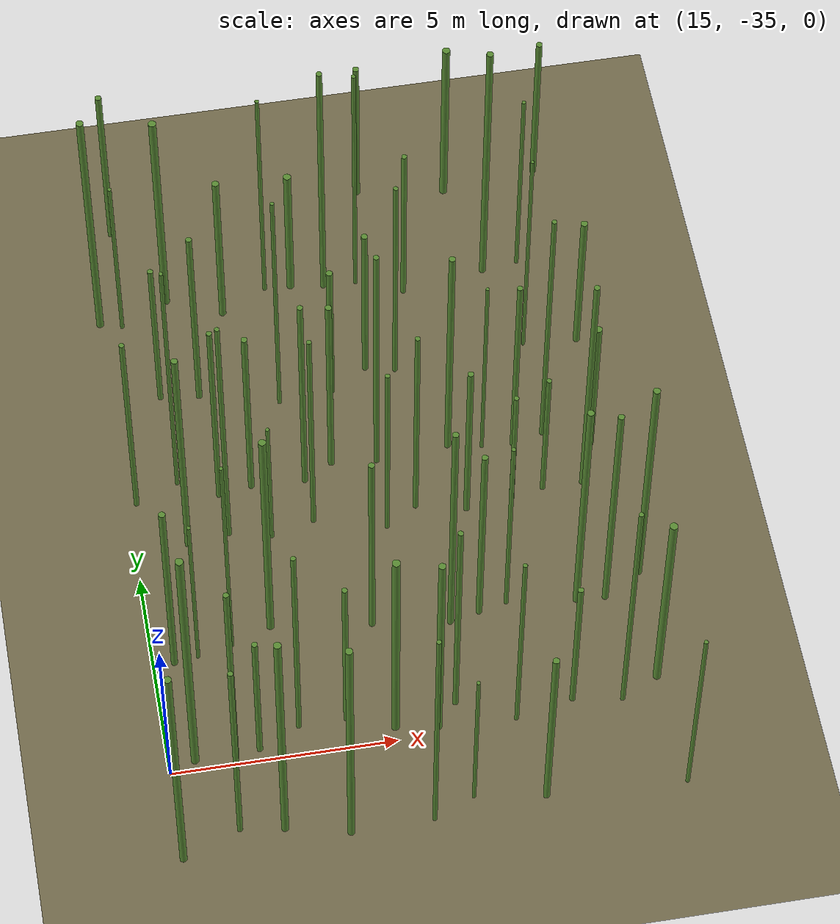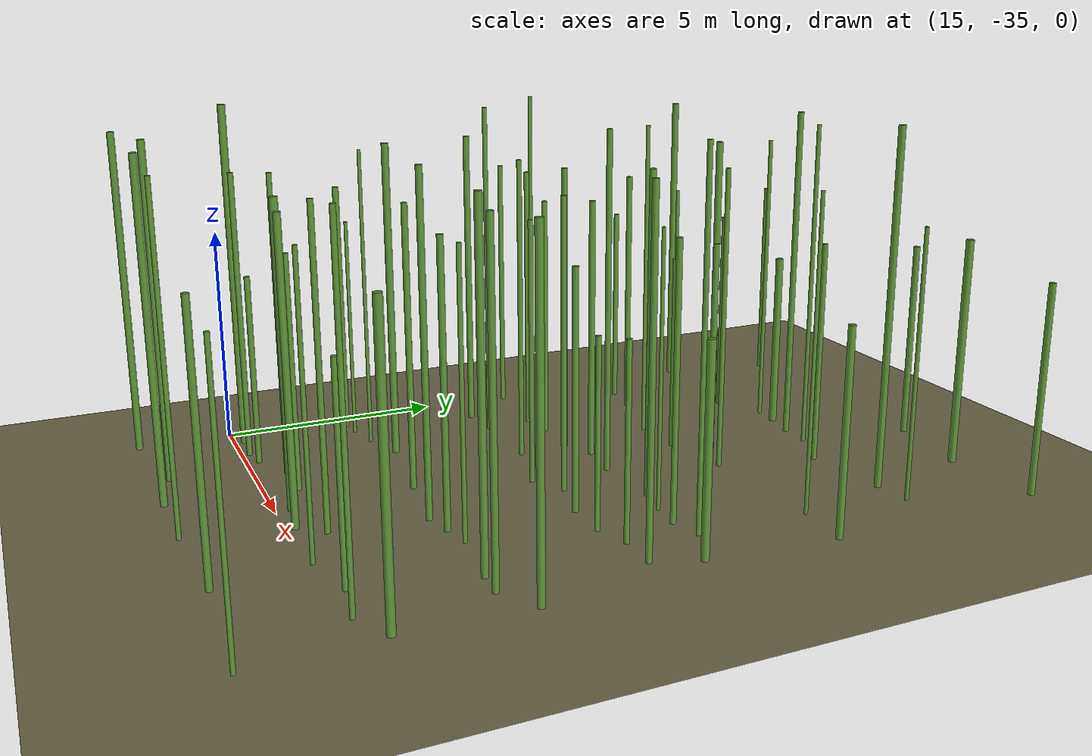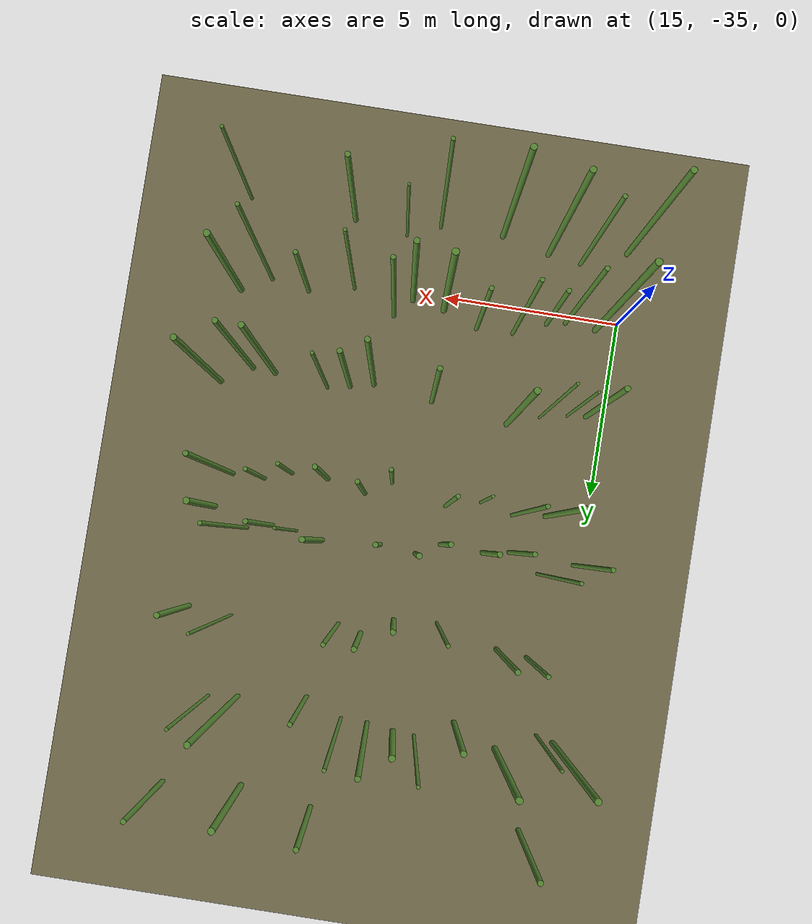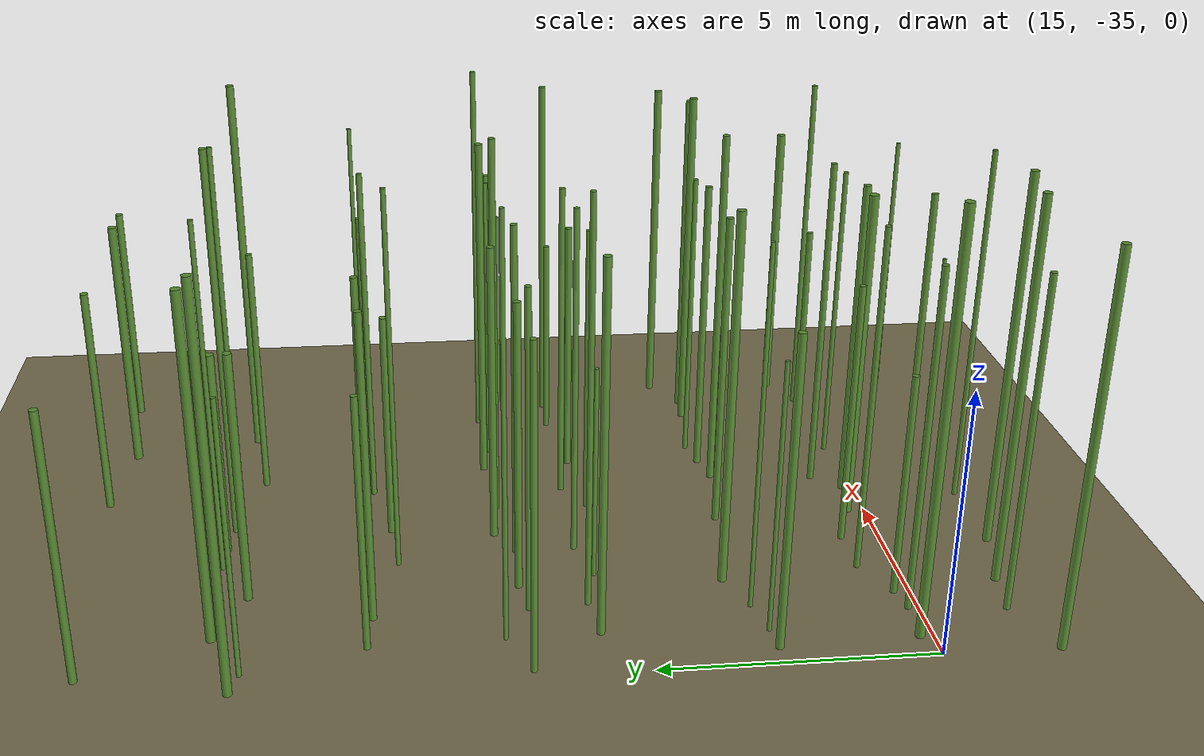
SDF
<sdf version="1.9">
 <world name="bamboo_field">
  <model name="ground_plane">
   <static>true</static>
   <link name="link">
    <collision name="collision">
     <geometry><plane><normal>0 0 1</normal><size>80.0 80.0</size></plane></geometry>
    </collision>
    <visual name="visual">
     <geometry><plane><normal>0 0 1</normal><size>80.0 80.0</size></plane></geometry>
     <material><diffuse>0.45 0.42 0.30 1</diffuse></material>
    </visual>
   </link>
  </model>
  <model name="bamboo_48">
   <static>true</static>
   <pose>14.992202338627873 -37.091404984395865 3.7214051640018058 0 0 0</pose>
   <link name="link">
    <collision name="collision">
     <geometry>
      <cylinder><radius>0.07980611524440209</radius><length>7.4428103280036115</length></cylinder>
     </geometry>
    </collision>
    <visual name="visual">
     <geometry>
      <cylinder><radius>0.07980611524440209</radius><length>7.4428103280036115</length></cylinder>
     </geometry>
     <material><diffuse>0.35 0.55 0.20 1</diffuse><specular>0.1 0.1 0.1 1</specular></material>
    </visual>
   </link>
  </model>
  <model name="bamboo_49">
   <static>true</static>
   <pose>16.28300082232963 -36.587541850248115 3.241323020301426 0 0 0</pose>
   <link name="link">
    <collision name="collision">
     <geometry>
      <cylinder><radius>0.06031886949160584</radius><length>6.482646040602852</length></cylinder>
     </geometry>
    </collision>
    <visual name="visual">
     <geometry>
      <cylinder><radius>0.06031886949160584</radius><length>6.482646040602852</length></cylinder>
     </geometry>
     <material><diffuse>0.35 0.55 0.20 1</diffuse><specular>0.1 0.1 0.1 1</specular></material>
    </visual>
   </link>
  </model>
  <model name="bamboo_50">
   <static>true</static>
   <pose>17.238006217313806 -36.72286343100513 3.7628324093266485 0 0 0</pose>
   <link name="link">
    <collision name="collision">
     <geometry>
      <cylinder><radius>0.08053858599701985</radius><length>7.525664818653297</length></cylinder>
     </geometry>
    </collision>
    <visual name="visual">
     <geometry>
      <cylinder><radius>0.08053858599701985</radius><length>7.525664818653297</length></cylinder>
     </geometry>
     <material><diffuse>0.35 0.55 0.20 1</diffuse><specular>0.1 0.1 0.1 1</specular></material>
    </visual>
   </link>
  </model>
  <model name="bamboo_51">
   <static>true</static>
   <pose>18.621054472765717 -37.05169456451756 3.728128056750559 0 0 0</pose>
   <link name="link">
    <collision name="collision">
     <geometry>
      <cylinder><radius>0.08011175694685695</radius><length>7.456256113501118</length></cylinder>
     </geometry>
    </collision>
    <visual name="visual">
     <geometry>
      <cylinder><radius>0.08011175694685695</radius><length>7.456256113501118</length></cylinder>
     </geometry>
     <material><diffuse>0.35 0.55 0.20 1</diffuse><specular>0.1 0.1 0.1 1</specular></material>
    </visual>
   </link>
  </model>
  <model name="bamboo_52">
   <static>true</static>
   <pose>20.43955873225553 -37.02482495409667 3.633173211193858 0 0 0</pose>
   <link name="link">
    <collision name="collision">
     <geometry>
      <cylinder><radius>0.05112168587728322</radius><length>7.266346422387716</length></cylinder>
     </geometry>
    </collision>
    <visual name="visual">
     <geometry>
      <cylinder><radius>0.05112168587728322</radius><length>7.266346422387716</length></cylinder>
     </geometry>
     <material><diffuse>0.35 0.55 0.20 1</diffuse><specular>0.1 0.1 0.1 1</specular></material>
    </visual>
   </link>
  </model>
  <model name="bamboo_53">
   <static>true</static>
   <pose>21.36526803347981 -36.63341150181249 2.3862595766554175 0 0 0</pose>
   <link name="link">
    <collision name="collision">
     <geometry>
      <cylinder><radius>0.04118322173507258</radius><length>4.772519153310835</length></cylinder>
     </geometry>
    </collision>
    <visual name="visual">
     <geometry>
      <cylinder><radius>0.04118322173507258</radius><length>4.772519153310835</length></cylinder>
     </geometry>
     <material><diffuse>0.35 0.55 0.20 1</diffuse><specular>0.1 0.1 0.1 1</specular></material>
    </visual>
   </link>
  </model>
  <model name="bamboo_54">
   <static>true</static>
   <pose>22.909045090299543 -36.86310754849858 2.7993567687201217 0 0 0</pose>
   <link name="link">
    <collision name="collision">
     <geometry>
      <cylinder><radius>0.07207408693038139</radius><length>5.5987135374402435</length></cylinder>
     </geometry>
    </collision>
    <visual name="visual">
     <geometry>
      <cylinder><radius>0.07207408693038139</radius><length>5.5987135374402435</length></cylinder>
     </geometry>
     <material><diffuse>0.35 0.55 0.20 1</diffuse><specular>0.1 0.1 0.1 1</specular></material>
    </visual>
   </link>
  </model>
  <model name="bamboo_55">
   <static>true</static>
   <pose>25.981090678561053 -37.018884441297196 2.8691275171292885 0 0 0</pose>
   <link name="link">
    <collision name="collision">
     <geometry>
      <cylinder><radius>0.04542012736073556</radius><length>5.738255034258577</length></cylinder>
     </geometry>
    </collision>
    <visual name="visual">
     <geometry>
      <cylinder><radius>0.04542012736073556</radius><length>5.738255034258577</length></cylinder>
     </geometry>
     <material><diffuse>0.35 0.55 0.20 1</diffuse><specular>0.1 0.1 0.1 1</specular></material>
    </visual>
   </link>
  </model>
  <model name="bamboo_111">
   <static>true</static>
   <pose>15.57031648206303 -34.75724380964546 3.9991448337549027 0 0 0</pose>
   <link name="link">
    <collision name="collision">
     <geometry>
      <cylinder><radius>0.08753931389031762</radius><length>7.998289667509805</length></cylinder>
     </geometry>
    </collision>
    <visual name="visual">
     <geometry>
      <cylinder><radius>0.08753931389031762</radius><length>7.998289667509805</length></cylinder>
     </geometry>
     <material><diffuse>0.35 0.55 0.20 1</diffuse><specular>0.1 0.1 0.1 1</specular></material>
    </visual>
   </link>
  </model>
  <model name="bamboo_112">
   <static>true</static>
   <pose>16.457062993857345 -34.81885912476621 3.3030189788673727 0 0 0</pose>
   <link name="link">
    <collision name="collision">
     <geometry>
      <cylinder><radius>0.06352504116258167</radius><length>6.6060379577347454</length></cylinder>
     </geometry>
    </collision>
    <visual name="visual">
     <geometry>
      <cylinder><radius>0.06352504116258167</radius><length>6.6060379577347454</length></cylinder>
     </geometry>
     <material><diffuse>0.35 0.55 0.20 1</diffuse><specular>0.1 0.1 0.1 1</specular></material>
    </visual>
   </link>
  </model>
  <model name="bamboo_113">
   <static>true</static>
   <pose>16.993516631826008 -34.712585652256834 2.1824848125876546 0 0 0</pose>
   <link name="link">
    <collision name="collision">
     <geometry>
      <cylinder><radius>0.06458629010955066</radius><length>4.364969625175309</length></cylinder>
     </geometry>
    </collision>
    <visual name="visual">
     <geometry>
      <cylinder><radius>0.06458629010955066</radius><length>4.364969625175309</length></cylinder>
     </geometry>
     <material><diffuse>0.35 0.55 0.20 1</diffuse><specular>0.1 0.1 0.1 1</specular></material>
    </visual>
   </link>
  </model>
  <model name="bamboo_114">
   <static>true</static>
   <pose>17.919749752981247 -34.28426605012815 3.387347347966865 0 0 0</pose>
   <link name="link">
    <collision name="collision">
     <geometry>
      <cylinder><radius>0.05649018317894827</radius><length>6.77469469593373</length></cylinder>
     </geometry>
    </collision>
    <visual name="visual">
     <geometry>
      <cylinder><radius>0.05649018317894827</radius><length>6.77469469593373</length></cylinder>
     </geometry>
     <material><diffuse>0.35 0.55 0.20 1</diffuse><specular>0.1 0.1 0.1 1</specular></material>
    </visual>
   </link>
  </model>
  <model name="bamboo_115">
   <static>true</static>
   <pose>18.969715360516613 -34.26677221905639 2.629034314340336 0 0 0</pose>
   <link name="link">
    <collision name="collision">
     <geometry>
      <cylinder><radius>0.06274129543008647</radius><length>5.258068628680672</length></cylinder>
     </geometry>
    </collision>
    <visual name="visual">
     <geometry>
      <cylinder><radius>0.06274129543008647</radius><length>5.258068628680672</length></cylinder>
     </geometry>
     <material><diffuse>0.35 0.55 0.20 1</diffuse><specular>0.1 0.1 0.1 1</specular></material>
    </visual>
   </link>
  </model>
  <model name="bamboo_116">
   <static>true</static>
   <pose>19.98490924897375 -34.656628228262875 3.315320772966258 0 0 0</pose>
   <link name="link">
    <collision name="collision">
     <geometry>
      <cylinder><radius>0.0894059607390877</radius><length>6.630641545932516</length></cylinder>
     </geometry>
    </collision>
    <visual name="visual">
     <geometry>
      <cylinder><radius>0.0894059607390877</radius><length>6.630641545932516</length></cylinder>
     </geometry>
     <material><diffuse>0.35 0.55 0.20 1</diffuse><specular>0.1 0.1 0.1 1</specular></material>
    </visual>
   </link>
  </model>
  <model name="bamboo_117">
   <static>true</static>
   <pose>20.912120124724236 -34.80341076097721 3.250817484290018 0 0 0</pose>
   <link name="link">
    <collision name="collision">
     <geometry>
      <cylinder><radius>0.07782215770277869</radius><length>6.501634968580036</length></cylinder>
     </geometry>
    </collision>
    <visual name="visual">
     <geometry>
      <cylinder><radius>0.07782215770277869</radius><length>6.501634968580036</length></cylinder>
     </geometry>
     <material><diffuse>0.35 0.55 0.20 1</diffuse><specular>0.1 0.1 0.1 1</specular></material>
    </visual>
   </link>
  </model>
  <model name="bamboo_118">
   <static>true</static>
   <pose>21.38481286346949 -34.264698756747215 3.3965000582443445 0 0 0</pose>
   <link name="link">
    <collision name="collision">
     <geometry>
      <cylinder><radius>0.06190580475361891</radius><length>6.793000116488689</length></cylinder>
     </geometry>
    </collision>
    <visual name="visual">
     <geometry>
      <cylinder><radius>0.06190580475361891</radius><length>6.793000116488689</length></cylinder>
     </geometry>
     <material><diffuse>0.35 0.55 0.20 1</diffuse><specular>0.1 0.1 0.1 1</specular></material>
    </visual>
   </link>
  </model>
  <model name="bamboo_119">
   <static>true</static>
   <pose>22.629939258286058 -34.88065508692533 3.1016780140053397 0 0 0</pose>
   <link name="link">
    <collision name="collision">
     <geometry>
      <cylinder><radius>0.04791890819026162</radius><length>6.203356028010679</length></cylinder>
     </geometry>
    </collision>
    <visual name="visual">
     <geometry>
      <cylinder><radius>0.04791890819026162</radius><length>6.203356028010679</length></cylinder>
     </geometry>
     <material><diffuse>0.35 0.55 0.20 1</diffuse><specular>0.1 0.1 0.1 1</specular></material>
    </visual>
   </link>
  </model>
  <model name="bamboo_120">
   <static>true</static>
   <pose>23.922766349344762 -34.59703867452736 2.234932298179115 0 0 0</pose>
   <link name="link">
    <collision name="collision">
     <geometry>
      <cylinder><radius>0.06307239470893916</radius><length>4.46986459635823</length></cylinder>
     </geometry>
    </collision>
    <visual name="visual">
     <geometry>
      <cylinder><radius>0.06307239470893916</radius><length>4.46986459635823</length></cylinder>
     </geometry>
     <material><diffuse>0.35 0.55 0.20 1</diffuse><specular>0.1 0.1 0.1 1</specular></material>
    </visual>
   </link>
  </model>
  <model name="bamboo_121">
   <static>true</static>
   <pose>25.01307870092561 -34.7752898935698 3.6694478911533888 0 0 0</pose>
   <link name="link">
    <collision name="collision">
     <geometry>
      <cylinder><radius>0.05367124483566371</radius><length>7.3388957823067775</length></cylinder>
     </geometry>
    </collision>
    <visual name="visual">
     <geometry>
      <cylinder><radius>0.05367124483566371</radius><length>7.3388957823067775</length></cylinder>
     </geometry>
     <material><diffuse>0.35 0.55 0.20 1</diffuse><specular>0.1 0.1 0.1 1</specular></material>
    </visual>
   </link>
  </model>
  <model name="bamboo_122">
   <static>true</static>
   <pose>25.86294186745797 -34.34108267372239 3.016481783185788 0 0 0</pose>
   <link name="link">
    <collision name="collision">
     <geometry>
      <cylinder><radius>0.0860934074965781</radius><length>6.032963566371576</length></cylinder>
     </geometry>
    </collision>
    <visual name="visual">
     <geometry>
      <cylinder><radius>0.0860934074965781</radius><length>6.032963566371576</length></cylinder>
     </geometry>
     <material><diffuse>0.35 0.55 0.20 1</diffuse><specular>0.1 0.1 0.1 1</specular></material>
    </visual>
   </link>
  </model>
  <model name="bamboo_179">
   <static>true</static>
   <pose>15.464235992336688 -32.23656887193994 2.9732655067285014 0 0 0</pose>
   <link name="link">
    <collision name="collision">
     <geometry>
      <cylinder><radius>0.07392431273800665</radius><length>5.946531013457003</length></cylinder>
     </geometry>
    </collision>
    <visual name="visual">
     <geometry>
      <cylinder><radius>0.07392431273800665</radius><length>5.946531013457003</length></cylinder>
     </geometry>
     <material><diffuse>0.35 0.55 0.20 1</diffuse><specular>0.1 0.1 0.1 1</specular></material>
    </visual>
   </link>
  </model>
  <model name="bamboo_180">
   <static>true</static>
   <pose>16.003212345110512 -32.17229666208291 2.6028387240368733 0 0 0</pose>
   <link name="link">
    <collision name="collision">
     <geometry>
      <cylinder><radius>0.040384354294994144</radius><length>5.205677448073747</length></cylinder>
     </geometry>
    </collision>
    <visual name="visual">
     <geometry>
      <cylinder><radius>0.040384354294994144</radius><length>5.205677448073747</length></cylinder>
     </geometry>
     <material><diffuse>0.35 0.55 0.20 1</diffuse><specular>0.1 0.1 0.1 1</specular></material>
    </visual>
   </link>
  </model>
  <model name="bamboo_181">
   <static>true</static>
   <pose>16.78054272257797 -32.00221581376237 3.4940282468595356 0 0 0</pose>
   <link name="link">
    <collision name="collision">
     <geometry>
      <cylinder><radius>0.040386495328465596</radius><length>6.988056493719071</length></cylinder>
     </geometry>
    </collision>
    <visual name="visual">
     <geometry>
      <cylinder><radius>0.040386495328465596</radius><length>6.988056493719071</length></cylinder>
     </geometry>
     <material><diffuse>0.35 0.55 0.20 1</diffuse><specular>0.1 0.1 0.1 1</specular></material>
    </visual>
   </link>
  </model>
  <model name="bamboo_182">
   <static>true</static>
   <pose>17.689477714232453 -31.665125972347223 3.6124003731335277 0 0 0</pose>
   <link name="link">
    <collision name="collision">
     <geometry>
      <cylinder><radius>0.08166771012099391</radius><length>7.224800746267055</length></cylinder>
     </geometry>
    </collision>
    <visual name="visual">
     <geometry>
      <cylinder><radius>0.08166771012099391</radius><length>7.224800746267055</length></cylinder>
     </geometry>
     <material><diffuse>0.35 0.55 0.20 1</diffuse><specular>0.1 0.1 0.1 1</specular></material>
    </visual>
   </link>
  </model>
  <model name="bamboo_183">
   <static>true</static>
   <pose>19.921060018142278 -31.975975253872598 3.146799361771686 0 0 0</pose>
   <link name="link">
    <collision name="collision">
     <geometry>
      <cylinder><radius>0.06878795803684155</radius><length>6.293598723543372</length></cylinder>
     </geometry>
    </collision>
    <visual name="visual">
     <geometry>
      <cylinder><radius>0.06878795803684155</radius><length>6.293598723543372</length></cylinder>
     </geometry>
     <material><diffuse>0.35 0.55 0.20 1</diffuse><specular>0.1 0.1 0.1 1</specular></material>
    </visual>
   </link>
  </model>
  <model name="bamboo_184">
   <static>true</static>
   <pose>21.644226192106714 -32.20667010885452 3.6640518261434143 0 0 0</pose>
   <link name="link">
    <collision name="collision">
     <geometry>
      <cylinder><radius>0.07090626316521201</radius><length>7.328103652286829</length></cylinder>
     </geometry>
    </collision>
    <visual name="visual">
     <geometry>
      <cylinder><radius>0.07090626316521201</radius><length>7.328103652286829</length></cylinder>
     </geometry>
     <material><diffuse>0.35 0.55 0.20 1</diffuse><specular>0.1 0.1 0.1 1</specular></material>
    </visual>
   </link>
  </model>
  <model name="bamboo_185">
   <static>true</static>
   <pose>22.315217797615155 -32.05116883247793 3.047925086001263 0 0 0</pose>
   <link name="link">
    <collision name="collision">
     <geometry>
      <cylinder><radius>0.0694435644151456</radius><length>6.095850172002526</length></cylinder>
     </geometry>
    </collision>
    <visual name="visual">
     <geometry>
      <cylinder><radius>0.0694435644151456</radius><length>6.095850172002526</length></cylinder>
     </geometry>
     <material><diffuse>0.35 0.55 0.20 1</diffuse><specular>0.1 0.1 0.1 1</specular></material>
    </visual>
   </link>
  </model>
  <model name="bamboo_186">
   <static>true</static>
   <pose>22.953805070159994 -31.911394582136953 3.0209665690842966 0 0 0</pose>
   <link name="link">
    <collision name="collision">
     <geometry>
      <cylinder><radius>0.04840663540228433</radius><length>6.041933138168593</length></cylinder>
     </geometry>
    </collision>
    <visual name="visual">
     <geometry>
      <cylinder><radius>0.04840663540228433</radius><length>6.041933138168593</length></cylinder>
     </geometry>
     <material><diffuse>0.35 0.55 0.20 1</diffuse><specular>0.1 0.1 0.1 1</specular></material>
    </visual>
   </link>
  </model>
  <model name="bamboo_187">
   <static>true</static>
   <pose>24.50688141893004 -32.102972831500324 3.637897203049704 0 0 0</pose>
   <link name="link">
    <collision name="collision">
     <geometry>
      <cylinder><radius>0.07636895528369522</radius><length>7.275794406099408</length></cylinder>
     </geometry>
    </collision>
    <visual name="visual">
     <geometry>
      <cylinder><radius>0.07636895528369522</radius><length>7.275794406099408</length></cylinder>
     </geometry>
     <material><diffuse>0.35 0.55 0.20 1</diffuse><specular>0.1 0.1 0.1 1</specular></material>
    </visual>
   </link>
  </model>
  <model name="bamboo_188">
   <static>true</static>
   <pose>25.153789509579223 -32.14435873549997 3.520430591093784 0 0 0</pose>
   <link name="link">
    <collision name="collision">
     <geometry>
      <cylinder><radius>0.07011994926365829</radius><length>7.040861182187568</length></cylinder>
     </geometry>
    </collision>
    <visual name="visual">
     <geometry>
      <cylinder><radius>0.07011994926365829</radius><length>7.040861182187568</length></cylinder>
     </geometry>
     <material><diffuse>0.35 0.55 0.20 1</diffuse><specular>0.1 0.1 0.1 1</specular></material>
    </visual>
   </link>
  </model>
  <model name="bamboo_189">
   <static>true</static>
   <pose>26.018306117811676 -31.621453044893073 3.5197542992154967 0 0 0</pose>
   <link name="link">
    <collision name="collision">
     <geometry>
      <cylinder><radius>0.07772229126234928</radius><length>7.039508598430993</length></cylinder>
     </geometry>
    </collision>
    <visual name="visual">
     <geometry>
      <cylinder><radius>0.07772229126234928</radius><length>7.039508598430993</length></cylinder>
     </geometry>
     <material><diffuse>0.35 0.55 0.20 1</diffuse><specular>0.1 0.1 0.1 1</specular></material>
    </visual>
   </link>
  </model>
  <model name="bamboo_249">
   <static>true</static>
   <pose>16.19329810499129 -29.211704080758942 3.533918001832622 0 0 0</pose>
   <link name="link">
    <collision name="collision">
     <geometry>
      <cylinder><radius>0.07255649887427999</radius><length>7.067836003665244</length></cylinder>
     </geometry>
    </collision>
    <visual name="visual">
     <geometry>
      <cylinder><radius>0.07255649887427999</radius><length>7.067836003665244</length></cylinder>
     </geometry>
     <material><diffuse>0.35 0.55 0.20 1</diffuse><specular>0.1 0.1 0.1 1</specular></material>
    </visual>
   </link>
  </model>
  <model name="bamboo_250">
   <static>true</static>
   <pose>17.138963953204257 -29.09571620735414 3.91330033990881 0 0 0</pose>
   <link name="link">
    <collision name="collision">
     <geometry>
      <cylinder><radius>0.054483582840080286</radius><length>7.82660067981762</length></cylinder>
     </geometry>
    </collision>
    <visual name="visual">
     <geometry>
      <cylinder><radius>0.054483582840080286</radius><length>7.82660067981762</length></cylinder>
     </geometry>
     <material><diffuse>0.35 0.55 0.20 1</diffuse><specular>0.1 0.1 0.1 1</specular></material>
    </visual>
   </link>
  </model>
  <model name="bamboo_251">
   <static>true</static>
   <pose>18.082622766904024 -29.32002212423 2.119826065869338 0 0 0</pose>
   <link name="link">
    <collision name="collision">
     <geometry>
      <cylinder><radius>0.04364865127526729</radius><length>4.239652131738676</length></cylinder>
     </geometry>
    </collision>
    <visual name="visual">
     <geometry>
      <cylinder><radius>0.04364865127526729</radius><length>4.239652131738676</length></cylinder>
     </geometry>
     <material><diffuse>0.35 0.55 0.20 1</diffuse><specular>0.1 0.1 0.1 1</specular></material>
    </visual>
   </link>
  </model>
  <model name="bamboo_252">
   <static>true</static>
   <pose>19.070447950748278 -29.056453759277126 3.436725770224875 0 0 0</pose>
   <link name="link">
    <collision name="collision">
     <geometry>
      <cylinder><radius>0.05562912496234665</radius><length>6.87345154044975</length></cylinder>
     </geometry>
    </collision>
    <visual name="visual">
     <geometry>
      <cylinder><radius>0.05562912496234665</radius><length>6.87345154044975</length></cylinder>
     </geometry>
     <material><diffuse>0.35 0.55 0.20 1</diffuse><specular>0.1 0.1 0.1 1</specular></material>
    </visual>
   </link>
  </model>
  <model name="bamboo_253">
   <static>true</static>
   <pose>20.68210402488909 -29.48545469753727 2.932945134081273 0 0 0</pose>
   <link name="link">
    <collision name="collision">
     <geometry>
      <cylinder><radius>0.05595579432015786</radius><length>5.865890268162546</length></cylinder>
     </geometry>
    </collision>
    <visual name="visual">
     <geometry>
      <cylinder><radius>0.05595579432015786</radius><length>5.865890268162546</length></cylinder>
     </geometry>
     <material><diffuse>0.35 0.55 0.20 1</diffuse><specular>0.1 0.1 0.1 1</specular></material>
    </visual>
   </link>
  </model>
  <model name="bamboo_254">
   <static>true</static>
   <pose>21.40738771006222 -29.05328266410065 3.2307548883279376 0 0 0</pose>
   <link name="link">
    <collision name="collision">
     <geometry>
      <cylinder><radius>0.0592074916750803</radius><length>6.461509776655875</length></cylinder>
     </geometry>
    </collision>
    <visual name="visual">
     <geometry>
      <cylinder><radius>0.0592074916750803</radius><length>6.461509776655875</length></cylinder>
     </geometry>
     <material><diffuse>0.35 0.55 0.20 1</diffuse><specular>0.1 0.1 0.1 1</specular></material>
    </visual>
   </link>
  </model>
  <model name="bamboo_255">
   <static>true</static>
   <pose>22.531663341244496 -29.310212035863216 2.625429841724546 0 0 0</pose>
   <link name="link">
    <collision name="collision">
     <geometry>
      <cylinder><radius>0.06888435189467981</radius><length>5.250859683449092</length></cylinder>
     </geometry>
    </collision>
    <visual name="visual">
     <geometry>
      <cylinder><radius>0.06888435189467981</radius><length>5.250859683449092</length></cylinder>
     </geometry>
     <material><diffuse>0.35 0.55 0.20 1</diffuse><specular>0.1 0.1 0.1 1</specular></material>
    </visual>
   </link>
  </model>
  <model name="bamboo_256">
   <static>true</static>
   <pose>23.565031277188517 -29.30518679118851 2.046352596432702 0 0 0</pose>
   <link name="link">
    <collision name="collision">
     <geometry>
      <cylinder><radius>0.05542702410272146</radius><length>4.092705192865404</length></cylinder>
     </geometry>
    </collision>
    <visual name="visual">
     <geometry>
      <cylinder><radius>0.05542702410272146</radius><length>4.092705192865404</length></cylinder>
     </geometry>
     <material><diffuse>0.35 0.55 0.20 1</diffuse><specular>0.1 0.1 0.1 1</specular></material>
    </visual>
   </link>
  </model>
  <model name="bamboo_257">
   <static>true</static>
   <pose>24.336468909028664 -29.04136028184741 2.1010808092557838 0 0 0</pose>
   <link name="link">
    <collision name="collision">
     <geometry>
      <cylinder><radius>0.05764475444281777</radius><length>4.2021616185115676</length></cylinder>
     </geometry>
    </collision>
    <visual name="visual">
     <geometry>
      <cylinder><radius>0.05764475444281777</radius><length>4.2021616185115676</length></cylinder>
     </geometry>
     <material><diffuse>0.35 0.55 0.20 1</diffuse><specular>0.1 0.1 0.1 1</specular></material>
    </visual>
   </link>
  </model>
  <model name="bamboo_258">
   <static>true</static>
   <pose>25.253396419860163 -29.04127890366214 3.694344730786936 0 0 0</pose>
   <link name="link">
    <collision name="collision">
     <geometry>
      <cylinder><radius>0.06683453746444634</radius><length>7.388689461573872</length></cylinder>
     </geometry>
    </collision>
    <visual name="visual">
     <geometry>
      <cylinder><radius>0.06683453746444634</radius><length>7.388689461573872</length></cylinder>
     </geometry>
     <material><diffuse>0.35 0.55 0.20 1</diffuse><specular>0.1 0.1 0.1 1</specular></material>
    </visual>
   </link>
  </model>
  <model name="bamboo_321">
   <static>true</static>
   <pose>15.192992456788575 -27.945219328982503 3.067300254832526 0 0 0</pose>
   <link name="link">
    <collision name="collision">
     <geometry>
      <cylinder><radius>0.05903308721864613</radius><length>6.134600509665052</length></cylinder>
     </geometry>
    </collision>
    <visual name="visual">
     <geometry>
      <cylinder><radius>0.05903308721864613</radius><length>6.134600509665052</length></cylinder>
     </geometry>
     <material><diffuse>0.35 0.55 0.20 1</diffuse><specular>0.1 0.1 0.1 1</specular></material>
    </visual>
   </link>
  </model>
  <model name="bamboo_322">
   <static>true</static>
   <pose>16.175280679327773 -27.540500641057672 3.9626369136931534 0 0 0</pose>
   <link name="link">
    <collision name="collision">
     <geometry><cylinder><radius>0.044930411578274</radius><length>7.925273827386307</length></cylinder></geometry>
    </collision>
    <visual name="visual">
     <geometry><cylinder><radius>0.044930411578274</radius><length>7.925273827386307</length></cylinder></geometry>
     <material><diffuse>0.35 0.55 0.20 1</diffuse><specular>0.1 0.1 0.1 1</specular></material>
    </visual>
   </link>
  </model>
  <model name="bamboo_323">
   <static>true</static>
   <pose>17.067261452292335 -28.026166568980468 3.1250494549287087 0 0 0</pose>
   <link name="link">
    <collision name="collision">
     <geometry>
      <cylinder><radius>0.06069650852893123</radius><length>6.250098909857417</length></cylinder>
     </geometry>
    </collision>
    <visual name="visual">
     <geometry>
      <cylinder><radius>0.06069650852893123</radius><length>6.250098909857417</length></cylinder>
     </geometry>
     <material><diffuse>0.35 0.55 0.20 1</diffuse><specular>0.1 0.1 0.1 1</specular></material>
    </visual>
   </link>
  </model>
  <model name="bamboo_324">
   <static>true</static>
   <pose>17.823367214563785 -27.897406767967748 2.8351561471103475 0 0 0</pose>
   <link name="link">
    <collision name="collision">
     <geometry>
      <cylinder><radius>0.06895714630187003</radius><length>5.670312294220695</length></cylinder>
     </geometry>
    </collision>
    <visual name="visual">
     <geometry>
      <cylinder><radius>0.06895714630187003</radius><length>5.670312294220695</length></cylinder>
     </geometry>
     <material><diffuse>0.35 0.55 0.20 1</diffuse><specular>0.1 0.1 0.1 1</specular></material>
    </visual>
   </link>
  </model>
  <model name="bamboo_325">
   <static>true</static>
   <pose>19.04800776597348 -27.948183737807835 3.3092159322420436 0 0 0</pose>
   <link name="link">
    <collision name="collision">
     <geometry>
      <cylinder><radius>0.06496507411846612</radius><length>6.618431864484087</length></cylinder>
     </geometry>
    </collision>
    <visual name="visual">
     <geometry>
      <cylinder><radius>0.06496507411846612</radius><length>6.618431864484087</length></cylinder>
     </geometry>
     <material><diffuse>0.35 0.55 0.20 1</diffuse><specular>0.1 0.1 0.1 1</specular></material>
    </visual>
   </link>
  </model>
  <model name="bamboo_326">
   <static>true</static>
   <pose>19.71501546537437 -27.571829608104707 2.981191165161565 0 0 0</pose>
   <link name="link">
    <collision name="collision">
     <geometry>
      <cylinder><radius>0.07208472271993535</radius><length>5.96238233032313</length></cylinder>
     </geometry>
    </collision>
    <visual name="visual">
     <geometry>
      <cylinder><radius>0.07208472271993535</radius><length>5.96238233032313</length></cylinder>
     </geometry>
     <material><diffuse>0.35 0.55 0.20 1</diffuse><specular>0.1 0.1 0.1 1</specular></material>
    </visual>
   </link>
  </model>
  <model name="bamboo_327">
   <static>true</static>
   <pose>20.74445399629831 -27.679045843924595 3.833798779388734 0 0 0</pose>
   <link name="link">
    <collision name="collision">
     <geometry>
      <cylinder><radius>0.06441581606270662</radius><length>7.667597558777468</length></cylinder>
     </geometry>
    </collision>
    <visual name="visual">
     <geometry>
      <cylinder><radius>0.06441581606270662</radius><length>7.667597558777468</length></cylinder>
     </geometry>
     <material><diffuse>0.35 0.55 0.20 1</diffuse><specular>0.1 0.1 0.1 1</specular></material>
    </visual>
   </link>
  </model>
  <model name="bamboo_328">
   <static>true</static>
   <pose>22.41580452714866 -27.538531166374508 3.5286776871440386 0 0 0</pose>
   <link name="link">
    <collision name="collision">
     <geometry>
      <cylinder><radius>0.07341077716965763</radius><length>7.057355374288077</length></cylinder>
     </geometry>
    </collision>
    <visual name="visual">
     <geometry>
      <cylinder><radius>0.07341077716965763</radius><length>7.057355374288077</length></cylinder>
     </geometry>
     <material><diffuse>0.35 0.55 0.20 1</diffuse><specular>0.1 0.1 0.1 1</specular></material>
    </visual>
   </link>
  </model>
  <model name="bamboo_329">
   <static>true</static>
   <pose>23.18094381316949 -27.69582780303849 3.01146583938613 0 0 0</pose>
   <link name="link">
    <collision name="collision">
     <geometry>
      <cylinder><radius>0.04045707308453309</radius><length>6.02293167877226</length></cylinder>
     </geometry>
    </collision>
    <visual name="visual">
     <geometry>
      <cylinder><radius>0.04045707308453309</radius><length>6.02293167877226</length></cylinder>
     </geometry>
     <material><diffuse>0.35 0.55 0.20 1</diffuse><specular>0.1 0.1 0.1 1</specular></material>
    </visual>
   </link>
  </model>
  <model name="bamboo_330">
   <static>true</static>
   <pose>23.89103387000457 -27.74216197551437 2.9757087680061423 0 0 0</pose>
   <link name="link">
    <collision name="collision">
     <geometry>
      <cylinder><radius>0.06416020768109125</radius><length>5.9514175360122845</length></cylinder>
     </geometry>
    </collision>
    <visual name="visual">
     <geometry>
      <cylinder><radius>0.06416020768109125</radius><length>5.9514175360122845</length></cylinder>
     </geometry>
     <material><diffuse>0.35 0.55 0.20 1</diffuse><specular>0.1 0.1 0.1 1</specular></material>
    </visual>
   </link>
  </model>
  <model name="bamboo_331">
   <static>true</static>
   <pose>24.603145425682914 -27.559102413512512 3.9549586964650234 0 0 0</pose>
   <link name="link">
    <collision name="collision">
     <geometry>
      <cylinder><radius>0.0537370368598916</radius><length>7.909917392930047</length></cylinder>
     </geometry>
    </collision>
    <visual name="visual">
     <geometry>
      <cylinder><radius>0.0537370368598916</radius><length>7.909917392930047</length></cylinder>
     </geometry>
     <material><diffuse>0.35 0.55 0.20 1</diffuse><specular>0.1 0.1 0.1 1</specular></material>
    </visual>
   </link>
  </model>
  <model name="bamboo_332">
   <static>true</static>
   <pose>25.628178511384885 -28.024084228134075 2.214032857388986 0 0 0</pose>
   <link name="link">
    <collision name="collision">
     <geometry>
      <cylinder><radius>0.0854886682999383</radius><length>4.428065714777972</length></cylinder>
     </geometry>
    </collision>
    <visual name="visual">
     <geometry>
      <cylinder><radius>0.0854886682999383</radius><length>4.428065714777972</length></cylinder>
     </geometry>
     <material><diffuse>0.35 0.55 0.20 1</diffuse><specular>0.1 0.1 0.1 1</specular></material>
    </visual>
   </link>
  </model>
  <model name="bamboo_394">
   <static>true</static>
   <pose>16.119223787563893 -25.127184811953242 2.4237029328154764 0 0 0</pose>
   <link name="link">
    <collision name="collision">
     <geometry>
      <cylinder><radius>0.061482155034261805</radius><length>4.847405865630953</length></cylinder>
     </geometry>
    </collision>
    <visual name="visual">
     <geometry>
      <cylinder><radius>0.061482155034261805</radius><length>4.847405865630953</length></cylinder>
     </geometry>
     <material><diffuse>0.35 0.55 0.20 1</diffuse><specular>0.1 0.1 0.1 1</specular></material>
    </visual>
   </link>
  </model>
  <model name="bamboo_395">
   <static>true</static>
   <pose>17.006967797198946 -25.229238995622165 2.97067580801701 0 0 0</pose>
   <link name="link">
    <collision name="collision">
     <geometry><cylinder><radius>0.068307105545857</radius><length>5.94135161603402</length></cylinder></geometry>
    </collision>
    <visual name="visual">
     <geometry><cylinder><radius>0.068307105545857</radius><length>5.94135161603402</length></cylinder></geometry>
     <material><diffuse>0.35 0.55 0.20 1</diffuse><specular>0.1 0.1 0.1 1</specular></material>
    </visual>
   </link>
  </model>
  <model name="bamboo_396">
   <static>true</static>
   <pose>18.80816983622253 -25.706552191828933 3.7153031998572277 0 0 0</pose>
   <link name="link">
    <collision name="collision">
     <geometry>
      <cylinder><radius>0.04621185896151992</radius><length>7.430606399714455</length></cylinder>
     </geometry>
    </collision>
    <visual name="visual">
     <geometry>
      <cylinder><radius>0.04621185896151992</radius><length>7.430606399714455</length></cylinder>
     </geometry>
     <material><diffuse>0.35 0.55 0.20 1</diffuse><specular>0.1 0.1 0.1 1</specular></material>
    </visual>
   </link>
  </model>
  <model name="bamboo_397">
   <static>true</static>
   <pose>20.037480419269077 -25.595741119853333 2.263826174768027 0 0 0</pose>
   <link name="link">
    <collision name="collision">
     <geometry>
      <cylinder><radius>0.07442959409557551</radius><length>4.527652349536054</length></cylinder>
     </geometry>
    </collision>
    <visual name="visual">
     <geometry>
      <cylinder><radius>0.07442959409557551</radius><length>4.527652349536054</length></cylinder>
     </geometry>
     <material><diffuse>0.35 0.55 0.20 1</diffuse><specular>0.1 0.1 0.1 1</specular></material>
    </visual>
   </link>
  </model>
  <model name="bamboo_398">
   <static>true</static>
   <pose>20.915863242173725 -25.07436515570245 2.5007785570982177 0 0 0</pose>
   <link name="link">
    <collision name="collision">
     <geometry>
      <cylinder><radius>0.07272939822093971</radius><length>5.0015571141964354</length></cylinder>
     </geometry>
    </collision>
    <visual name="visual">
     <geometry>
      <cylinder><radius>0.07272939822093971</radius><length>5.0015571141964354</length></cylinder>
     </geometry>
     <material><diffuse>0.35 0.55 0.20 1</diffuse><specular>0.1 0.1 0.1 1</specular></material>
    </visual>
   </link>
  </model>
  <model name="bamboo_399">
   <static>true</static>
   <pose>21.585683325523817 -25.24818568401893 3.398882743049147 0 0 0</pose>
   <link name="link">
    <collision name="collision">
     <geometry>
      <cylinder><radius>0.05527546224221153</radius><length>6.797765486098294</length></cylinder>
     </geometry>
    </collision>
    <visual name="visual">
     <geometry>
      <cylinder><radius>0.05527546224221153</radius><length>6.797765486098294</length></cylinder>
     </geometry>
     <material><diffuse>0.35 0.55 0.20 1</diffuse><specular>0.1 0.1 0.1 1</specular></material>
    </visual>
   </link>
  </model>
  <model name="bamboo_400">
   <static>true</static>
   <pose>24.65643719911778 -25.015316907262417 3.3911942145760974 0 0 0</pose>
   <link name="link">
    <collision name="collision">
     <geometry>
      <cylinder><radius>0.04046434738042301</radius><length>6.782388429152195</length></cylinder>
     </geometry>
    </collision>
    <visual name="visual">
     <geometry>
      <cylinder><radius>0.04046434738042301</radius><length>6.782388429152195</length></cylinder>
     </geometry>
     <material><diffuse>0.35 0.55 0.20 1</diffuse><specular>0.1 0.1 0.1 1</specular></material>
    </visual>
   </link>
  </model>
  <model name="bamboo_401">
   <static>true</static>
   <pose>25.901063810157332 -25.090333047401217 2.204854340899013 0 0 0</pose>
   <link name="link">
    <collision name="collision">
     <geometry>
      <cylinder><radius>0.07653816908819855</radius><length>4.409708681798026</length></cylinder>
     </geometry>
    </collision>
    <visual name="visual">
     <geometry>
      <cylinder><radius>0.07653816908819855</radius><length>4.409708681798026</length></cylinder>
     </geometry>
     <material><diffuse>0.35 0.55 0.20 1</diffuse><specular>0.1 0.1 0.1 1</specular></material>
    </visual>
   </link>
  </model>
  <model name="bamboo_456">
   <static>true</static>
   <pose>15.00897009799181 -22.831198445927516 3.7213389331831017 0 0 0</pose>
   <link name="link">
    <collision name="collision">
     <geometry>
      <cylinder><radius>0.08232404437895673</radius><length>7.442677866366203</length></cylinder>
     </geometry>
    </collision>
    <visual name="visual">
     <geometry>
      <cylinder><radius>0.08232404437895673</radius><length>7.442677866366203</length></cylinder>
     </geometry>
     <material><diffuse>0.35 0.55 0.20 1</diffuse><specular>0.1 0.1 0.1 1</specular></material>
    </visual>
   </link>
  </model>
  <model name="bamboo_457">
   <static>true</static>
   <pose>15.50886442638624 -22.982459271774086 2.603530307450938 0 0 0</pose>
   <link name="link">
    <collision name="collision">
     <geometry>
      <cylinder><radius>0.045051608509034315</radius><length>5.207060614901876</length></cylinder>
     </geometry>
    </collision>
    <visual name="visual">
     <geometry>
      <cylinder><radius>0.045051608509034315</radius><length>5.207060614901876</length></cylinder>
     </geometry>
     <material><diffuse>0.35 0.55 0.20 1</diffuse><specular>0.1 0.1 0.1 1</specular></material>
    </visual>
   </link>
  </model>
  <model name="bamboo_458">
   <static>true</static>
   <pose>16.614767540665397 -22.41459196455266 3.298360531289628 0 0 0</pose>
   <link name="link">
    <collision name="collision">
     <geometry>
      <cylinder><radius>0.0880331050184369</radius><length>6.596721062579256</length></cylinder>
     </geometry>
    </collision>
    <visual name="visual">
     <geometry>
      <cylinder><radius>0.0880331050184369</radius><length>6.596721062579256</length></cylinder>
     </geometry>
     <material><diffuse>0.35 0.55 0.20 1</diffuse><specular>0.1 0.1 0.1 1</specular></material>
    </visual>
   </link>
  </model>
  <model name="bamboo_459">
   <static>true</static>
   <pose>17.882514939361716 -22.969965850992725 2.446474427961285 0 0 0</pose>
   <link name="link">
    <collision name="collision">
     <geometry>
      <cylinder><radius>0.07934958962977884</radius><length>4.89294885592257</length></cylinder>
     </geometry>
    </collision>
    <visual name="visual">
     <geometry>
      <cylinder><radius>0.07934958962977884</radius><length>4.89294885592257</length></cylinder>
     </geometry>
     <material><diffuse>0.35 0.55 0.20 1</diffuse><specular>0.1 0.1 0.1 1</specular></material>
    </visual>
   </link>
  </model>
  <model name="bamboo_460">
   <static>true</static>
   <pose>18.957130794987627 -22.428623280090946 3.4576619118719982 0 0 0</pose>
   <link name="link">
    <collision name="collision">
     <geometry>
      <cylinder><radius>0.04636741823617677</radius><length>6.9153238237439965</length></cylinder>
     </geometry>
    </collision>
    <visual name="visual">
     <geometry>
      <cylinder><radius>0.04636741823617677</radius><length>6.9153238237439965</length></cylinder>
     </geometry>
     <material><diffuse>0.35 0.55 0.20 1</diffuse><specular>0.1 0.1 0.1 1</specular></material>
    </visual>
   </link>
  </model>
  <model name="bamboo_461">
   <static>true</static>
   <pose>19.571291760159447 -22.44798524049322 2.064765485854175 0 0 0</pose>
   <link name="link">
    <collision name="collision">
     <geometry>
      <cylinder><radius>0.08825919701437754</radius><length>4.12953097170835</length></cylinder>
     </geometry>
    </collision>
    <visual name="visual">
     <geometry>
      <cylinder><radius>0.08825919701437754</radius><length>4.12953097170835</length></cylinder>
     </geometry>
     <material><diffuse>0.35 0.55 0.20 1</diffuse><specular>0.1 0.1 0.1 1</specular></material>
    </visual>
   </link>
  </model>
  <model name="bamboo_462">
   <static>true</static>
   <pose>20.33508272489414 -22.57097166231449 3.8733755871085087 0 0 0</pose>
   <link name="link">
    <collision name="collision">
     <geometry>
      <cylinder><radius>0.06827751230601602</radius><length>7.746751174217017</length></cylinder>
     </geometry>
    </collision>
    <visual name="visual">
     <geometry>
      <cylinder><radius>0.06827751230601602</radius><length>7.746751174217017</length></cylinder>
     </geometry>
     <material><diffuse>0.35 0.55 0.20 1</diffuse><specular>0.1 0.1 0.1 1</specular></material>
    </visual>
   </link>
  </model>
  <model name="bamboo_463">
   <static>true</static>
   <pose>21.093938946048986 -22.59643592278422 3.770640506790275 0 0 0</pose>
   <link name="link">
    <collision name="collision">
     <geometry>
      <cylinder><radius>0.048394370837579206</radius><length>7.54128101358055</length></cylinder>
     </geometry>
    </collision>
    <visual name="visual">
     <geometry>
      <cylinder><radius>0.048394370837579206</radius><length>7.54128101358055</length></cylinder>
     </geometry>
     <material><diffuse>0.35 0.55 0.20 1</diffuse><specular>0.1 0.1 0.1 1</specular></material>
    </visual>
   </link>
  </model>
  <model name="bamboo_464">
   <static>true</static>
   <pose>22.162150416606547 -23.045255645940916 2.5304248811257524 0 0 0</pose>
   <link name="link">
    <collision name="collision">
     <geometry>
      <cylinder><radius>0.06233149670488969</radius><length>5.060849762251505</length></cylinder>
     </geometry>
    </collision>
    <visual name="visual">
     <geometry>
      <cylinder><radius>0.06233149670488969</radius><length>5.060849762251505</length></cylinder>
     </geometry>
     <material><diffuse>0.35 0.55 0.20 1</diffuse><specular>0.1 0.1 0.1 1</specular></material>
    </visual>
   </link>
  </model>
  <model name="bamboo_465">
   <static>true</static>
   <pose>24.10983385033787 -22.747554596554185 3.9382036502113706 0 0 0</pose>
   <link name="link">
    <collision name="collision">
     <geometry>
      <cylinder><radius>0.07662922472493844</radius><length>7.876407300422741</length></cylinder>
     </geometry>
    </collision>
    <visual name="visual">
     <geometry>
      <cylinder><radius>0.07662922472493844</radius><length>7.876407300422741</length></cylinder>
     </geometry>
     <material><diffuse>0.35 0.55 0.20 1</diffuse><specular>0.1 0.1 0.1 1</specular></material>
    </visual>
   </link>
  </model>
  <model name="bamboo_466">
   <static>true</static>
   <pose>24.946967986264518 -22.637033297806443 2.958978500794321 0 0 0</pose>
   <link name="link">
    <collision name="collision">
     <geometry>
      <cylinder><radius>0.04507142798185608</radius><length>5.917957001588642</length></cylinder>
     </geometry>
    </collision>
    <visual name="visual">
     <geometry>
      <cylinder><radius>0.04507142798185608</radius><length>5.917957001588642</length></cylinder>
     </geometry>
     <material><diffuse>0.35 0.55 0.20 1</diffuse><specular>0.1 0.1 0.1 1</specular></material>
    </visual>
   </link>
  </model>
  <model name="bamboo_525">
   <static>true</static>
   <pose>15.598101016890903 -20.22904720267946 2.5399542990743784 0 0 0</pose>
   <link name="link">
    <collision name="collision">
     <geometry>
      <cylinder><radius>0.07312414829444483</radius><length>5.079908598148757</length></cylinder>
     </geometry>
    </collision>
    <visual name="visual">
     <geometry>
      <cylinder><radius>0.07312414829444483</radius><length>5.079908598148757</length></cylinder>
     </geometry>
     <material><diffuse>0.35 0.55 0.20 1</diffuse><specular>0.1 0.1 0.1 1</specular></material>
    </visual>
   </link>
  </model>
  <model name="bamboo_528">
   <static>true</static>
   <pose>21.56148049975368 -19.966867925890067 2.2982889853335324 0 0 0</pose>
   <link name="link">
    <collision name="collision">
     <geometry><cylinder><radius>0.073451096525082</radius><length>4.596577970667065</length></cylinder></geometry>
    </collision>
    <visual name="visual">
     <geometry><cylinder><radius>0.073451096525082</radius><length>4.596577970667065</length></cylinder></geometry>
     <material><diffuse>0.35 0.55 0.20 1</diffuse><specular>0.1 0.1 0.1 1</specular></material>
    </visual>
   </link>
  </model>
  <model name="bamboo_529">
   <static>true</static>
   <pose>23.615199066175496 -20.255195428224994 2.592044357420877 0 0 0</pose>
   <link name="link">
    <collision name="collision">
     <geometry>
      <cylinder><radius>0.08943329653788021</radius><length>5.184088714841754</length></cylinder>
     </geometry>
    </collision>
    <visual name="visual">
     <geometry>
      <cylinder><radius>0.08943329653788021</radius><length>5.184088714841754</length></cylinder>
     </geometry>
     <material><diffuse>0.35 0.55 0.20 1</diffuse><specular>0.1 0.1 0.1 1</specular></material>
    </visual>
   </link>
  </model>
  <model name="bamboo_531">
   <static>true</static>
   <pose>25.84493732838721 -20.018661507017974 2.3410245527127507 0 0 0</pose>
   <link name="link">
    <collision name="collision">
     <geometry>
      <cylinder><radius>0.0731677513745422</radius><length>4.682049105425501</length></cylinder>
     </geometry>
    </collision>
    <visual name="visual">
     <geometry>
      <cylinder><radius>0.0731677513745422</radius><length>4.682049105425501</length></cylinder>
     </geometry>
     <material><diffuse>0.35 0.55 0.20 1</diffuse><specular>0.1 0.1 0.1 1</specular></material>
    </visual>
   </link>
  </model>
 </world>
</sdf>
